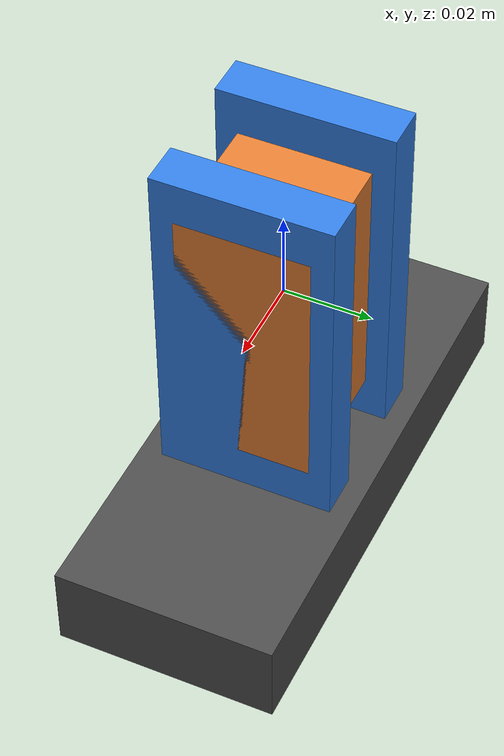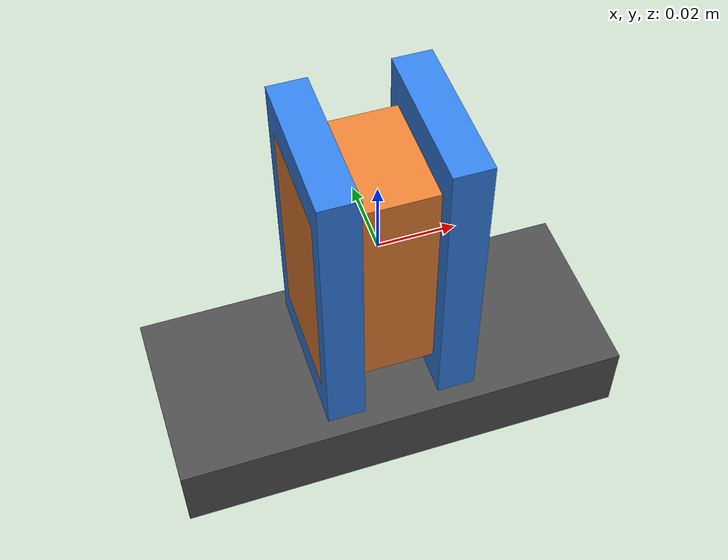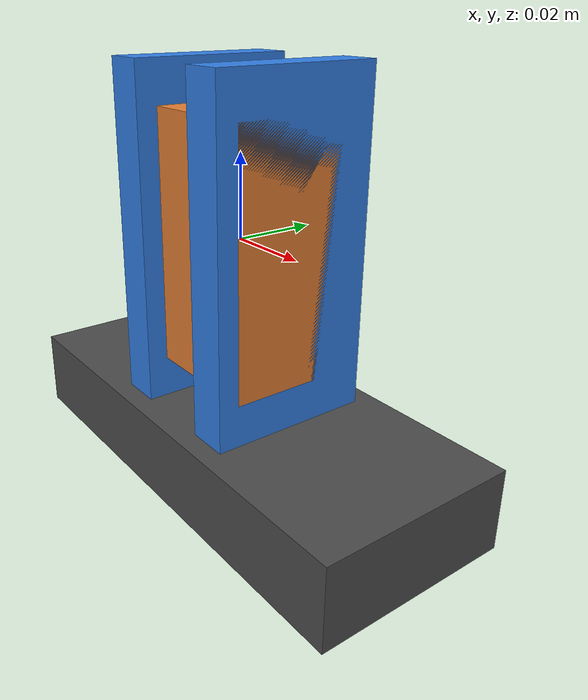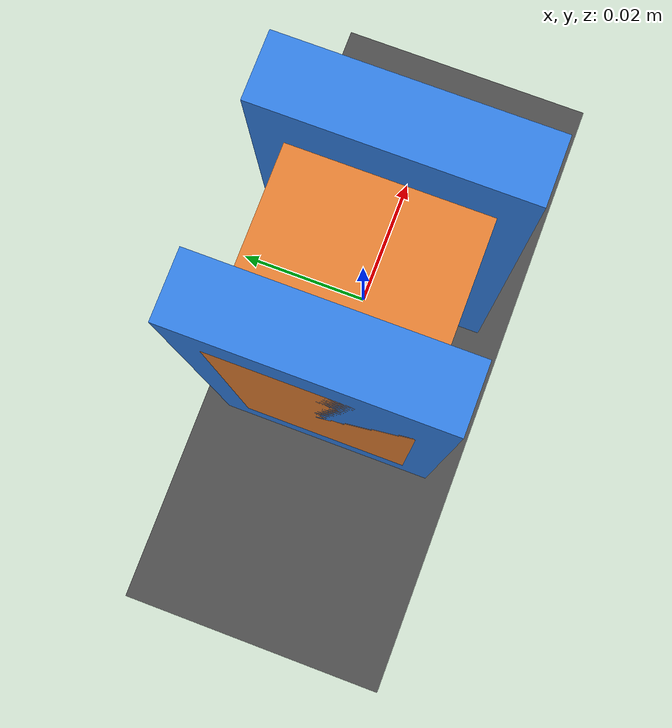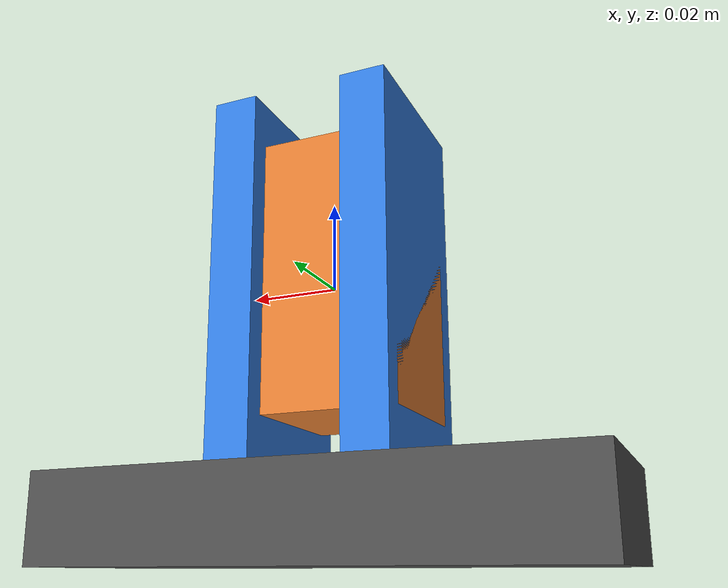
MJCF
<mujoco model="prealigned gripper contact">
  <option timestep="0.002" gravity="0 0 0"/>

  <worldbody>
    <body name="gripper_base">
      <geom name="base_visual" type="box" size="0.06 0.025 0.01"
            pos="0 0 -0.05" contype="0" conaffinity="0" rgba="0.3 0.3 0.3 1"/>

      <body name="left_finger" pos="-0.015 0 0">
        <joint name="left_slide" type="slide" axis="-1 0 0" range="0 0.04" damping="2"/>
        <geom name="left_finger_geom" type="box" size="0.005 0.02 0.04" mass="0.1"
              friction="1 0.005 0.0001" rgba="0.2 0.5 0.9 1"/>
      </body>

      <body name="right_finger" pos="0.015 0 0">
        <joint name="right_slide" type="slide" axis="1 0 0" range="0 0.04" damping="2"/>
        <geom name="right_finger_geom" type="box" size="0.005 0.02 0.04" mass="0.1"
              friction="1 0.005 0.0001" rgba="0.2 0.5 0.9 1"/>
      </body>
    </body>

    <body name="object" pos="0 0 0">
      <freejoint name="object_free"/>
      <geom name="object_geom" type="box" size="0.02 0.015 0.03" mass="0.05"
            friction="1 0.005 0.0001" rgba="0.9 0.5 0.2 1"/>
    </body>
  </worldbody>

  <actuator>
    <position name="left_position" joint="left_slide" kp="100"
              ctrlrange="0 0.04" forcerange="-10 10"/>
    <position name="right_position" joint="right_slide" kp="100"
              ctrlrange="0 0.04" forcerange="-10 10"/>
  </actuator>
</mujoco>
